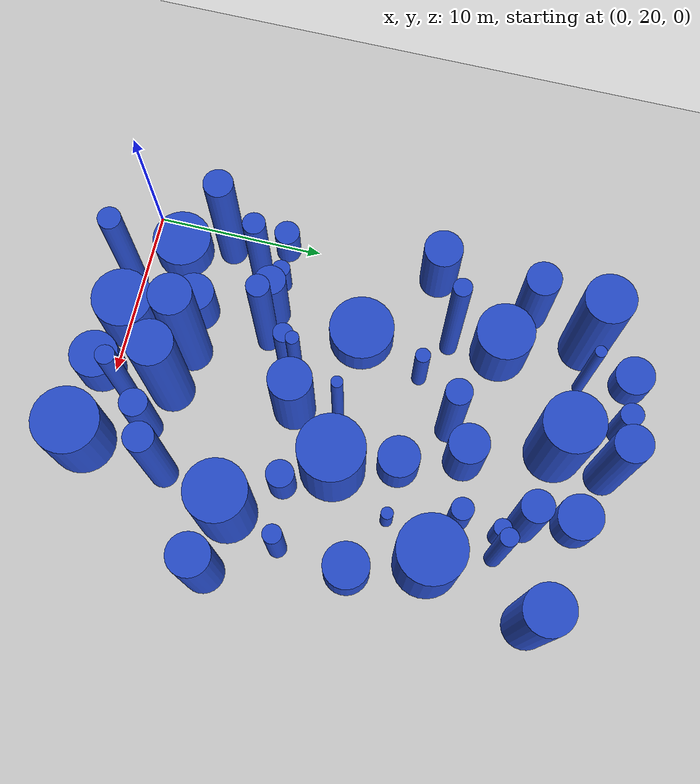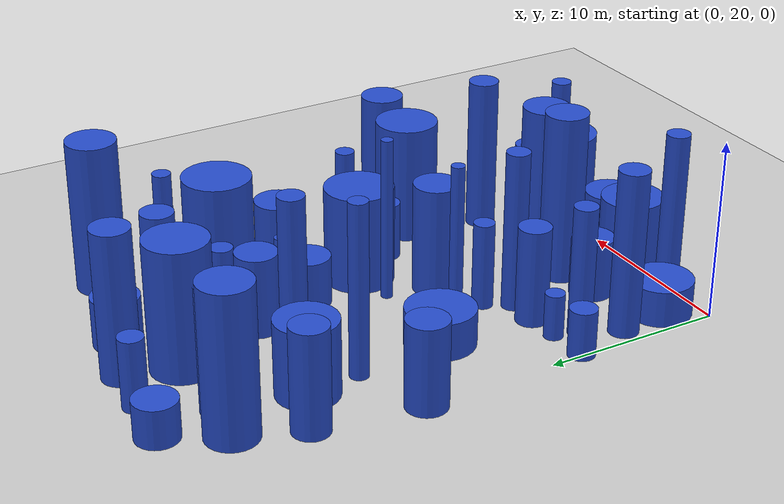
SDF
<sdf version="1.6">
 <world name="default">
  <model name="ground_plane">
   <static>1</static>
   <link name="link">
    <collision name="collision">
     <geometry><plane><normal>0 0 1</normal><size>100 100</size></plane></geometry>
     <surface><friction><ode><mu>100</mu><mu2>50</mu2></ode></friction></surface>
    </collision>
    <visual name="visual">
     <cast_shadows>0</cast_shadows>
     <geometry><plane><normal>0 0 1</normal><size>100 100</size></plane></geometry>
     <material>
      <script><uri>file://media/materials/scripts/gazebo.material</uri><name>Gazebo/Grey</name></script>
     </material>
    </visual>
   </link>
  </model>
  <model name="Cylinder 1">
   <static>1</static>
   <link name="link">
    <inertial>
     <mass>0.00941</mass>
     <inertia><ixx>0.01163</ixx><ixy>0</ixy><ixz>0</ixz><iyy>0.01163</iyy><iyz>0</iyz><izz>0.01163</izz></inertia>
    </inertial>
    <collision name="collision">
     <geometry><cylinder><length>2.96006</length><radius>1.42234</radius></cylinder></geometry>
     <surface><contact><collide_without_contact>1</collide_without_contact></contact></surface>
    </collision>
    <visual name="visual">
     <geometry><cylinder><length>2.96006</length><radius>1.42234</radius></cylinder></geometry>
     <material>
      <script><uri>file://media/materials/scripts/gazebo.material</uri><name>Gazebo/Blue</name></script>
     </material>
    </visual>
    <gravity>0</gravity>
   </link>
   <pose>10.14698 19.21792 1.48003 0 0 0</pose>
  </model>
  <model name="Cylinder 2">
   <static>1</static>
   <link name="link">
    <inertial>
     <mass>0.00759</mass>
     <inertia><ixx>0.00820</ixx><ixy>0</ixy><ixz>0</ixz><iyy>0.00820</iyy><iyz>0</iyz><izz>0.00820</izz></inertia>
    </inertial>
    <collision name="collision">
     <geometry><cylinder><length>2.78685</length><radius>1.31651</radius></cylinder></geometry>
     <surface><contact><collide_without_contact>1</collide_without_contact></contact></surface>
    </collision>
    <visual name="visual">
     <geometry><cylinder><length>2.78685</length><radius>1.31651</radius></cylinder></geometry>
     <material>
      <script><uri>file://media/materials/scripts/gazebo.material</uri><name>Gazebo/Blue</name></script>
     </material>
    </visual>
    <gravity>0</gravity>
   </link>
   <pose>12.98345 48.10699 1.39342 0 0 0</pose>
  </model>
  <model name="Cylinder 4">
   <static>1</static>
   <link name="link">
    <inertial>
     <mass>0.00154</mass>
     <inertia><ixx>0.01095</ixx><ixy>0</ixy><ixz>0</ixz><iyy>0.01095</iyy><iyz>0</iyz><izz>0.01095</izz></inertia>
    </inertial>
    <collision name="collision">
     <geometry><cylinder><length>9.22210</length><radius>0.32600</radius></cylinder></geometry>
     <surface><contact><collide_without_contact>1</collide_without_contact></contact></surface>
    </collision>
    <visual name="visual">
     <geometry><cylinder><length>9.22210</length><radius>0.32600</radius></cylinder></geometry>
     <material>
      <script><uri>file://media/materials/scripts/gazebo.material</uri><name>Gazebo/Blue</name></script>
     </material>
    </visual>
    <gravity>0</gravity>
   </link>
   <pose>10.38785 33.68484 4.61105 0 0 0</pose>
  </model>
  <model name="Cylinder 8">
   <static>1</static>
   <link name="link">
    <inertial>
     <mass>0.02367</mass>
     <inertia><ixx>0.16753</ixx><ixy>0</ixy><ixz>0</ixz><iyy>0.16753</iyy><iyz>0</iyz><izz>0.16753</izz></inertia>
    </inertial>
    <collision name="collision">
     <geometry><cylinder><length>8.93671</length><radius>1.29858</radius></cylinder></geometry>
     <surface><contact><collide_without_contact>1</collide_without_contact></contact></surface>
    </collision>
    <visual name="visual">
     <geometry><cylinder><length>8.93671</length><radius>1.29858</radius></cylinder></geometry>
     <material>
      <script><uri>file://media/materials/scripts/gazebo.material</uri><name>Gazebo/Blue</name></script>
     </material>
    </visual>
    <gravity>0</gravity>
   </link>
   <pose>10.47707 23.64607 4.46835 0 0 0</pose>
  </model>
  <model name="Cylinder 9">
   <static>1</static>
   <link name="link">
    <inertial>
     <mass>0.02638</mass>
     <inertia><ixx>0.16759</ixx><ixy>0</ixy><ixz>0</ixz><iyy>0.16759</iyy><iyz>0</iyz><izz>0.16759</izz></inertia>
    </inertial>
    <collision name="collision">
     <geometry><cylinder><length>8.37943</length><radius>1.41575</radius></cylinder></geometry>
     <surface><contact><collide_without_contact>1</collide_without_contact></contact></surface>
    </collision>
    <visual name="visual">
     <geometry><cylinder><length>8.37943</length><radius>1.41575</radius></cylinder></geometry>
     <material>
      <script><uri>file://media/materials/scripts/gazebo.material</uri><name>Gazebo/Blue</name></script>
     </material>
    </visual>
    <gravity>0</gravity>
   </link>
   <pose>2.31083 46.71842 4.18972 0 0 0</pose>
  </model>
  <model name="Cylinder 11">
   <static>1</static>
   <link name="link">
    <inertial>
     <mass>0.00958</mass>
     <inertia><ixx>0.01936</ixx><ixy>0</ixy><ixz>0</ixz><iyy>0.01936</iyy><iyz>0</iyz><izz>0.01936</izz></inertia>
    </inertial>
    <collision name="collision">
     <geometry><cylinder><length>4.49131</length><radius>1.16536</radius></cylinder></geometry>
     <surface><contact><collide_without_contact>1</collide_without_contact></contact></surface>
    </collision>
    <visual name="visual">
     <geometry><cylinder><length>4.49131</length><radius>1.16536</radius></cylinder></geometry>
     <material>
      <script><uri>file://media/materials/scripts/gazebo.material</uri><name>Gazebo/Blue</name></script>
     </material>
    </visual>
    <gravity>0</gravity>
   </link>
   <pose>10.76327 41.18394 2.24566 0 0 0</pose>
  </model>
  <model name="Cylinder 12">
   <static>1</static>
   <link name="link">
    <inertial>
     <mass>0.00571</mass>
     <inertia><ixx>0.01551</ixx><ixy>0</ixy><ixz>0</ixz><iyy>0.01551</iyy><iyz>0</iyz><izz>0.01551</izz></inertia>
    </inertial>
    <collision name="collision">
     <geometry><cylinder><length>5.53663</length><radius>0.80994</radius></cylinder></geometry>
     <surface><contact><collide_without_contact>1</collide_without_contact></contact></surface>
    </collision>
    <visual name="visual">
     <geometry><cylinder><length>5.53663</length><radius>0.80994</radius></cylinder></geometry>
     <material>
      <script><uri>file://media/materials/scripts/gazebo.material</uri><name>Gazebo/Blue</name></script>
     </material>
    </visual>
    <gravity>0</gravity>
   </link>
   <pose>13.00356 22.89477 2.76832 0 0 0</pose>
  </model>
  <model name="Cylinder 18">
   <static>1</static>
   <link name="link">
    <inertial>
     <mass>0.03255</mass>
     <inertia><ixx>0.14876</ixx><ixy>0</ixy><ixz>0</ixz><iyy>0.14876</iyy><iyz>0</iyz><izz>0.14876</izz></inertia>
    </inertial>
    <collision name="collision">
     <geometry><cylinder><length>6.75589</length><radius>1.75135</radius></cylinder></geometry>
     <surface><contact><collide_without_contact>1</collide_without_contact></contact></surface>
    </collision>
    <visual name="visual">
     <geometry><cylinder><length>6.75589</length><radius>1.75135</radius></cylinder></geometry>
     <material>
      <script><uri>file://media/materials/scripts/gazebo.material</uri><name>Gazebo/Blue</name></script>
     </material>
    </visual>
    <gravity>0</gravity>
   </link>
   <pose>16.87051 28.68189 3.37795 0 0 0</pose>
  </model>
  <model name="Cylinder 19">
   <static>1</static>
   <link name="link">
    <inertial>
     <mass>0.02855</mass>
     <inertia><ixx>0.08273</ixx><ixy>0</ixy><ixz>0</ixz><iyy>0.08273</iyy><iyz>0</iyz><izz>0.08273</izz></inertia>
    </inertial>
    <collision name="collision">
     <geometry><cylinder><length>4.85111</length><radius>1.93564</radius></cylinder></geometry>
     <surface><contact><collide_without_contact>1</collide_without_contact></contact></surface>
    </collision>
    <visual name="visual">
     <geometry><cylinder><length>4.85111</length><radius>1.93564</radius></cylinder></geometry>
     <material>
      <script><uri>file://media/materials/scripts/gazebo.material</uri><name>Gazebo/Blue</name></script>
     </material>
    </visual>
    <gravity>0</gravity>
   </link>
   <pose>14.65519 19.36153 2.42556 0 0 0</pose>
  </model>
  <model name="Cylinder 23">
   <static>1</static>
   <link name="link">
    <inertial>
     <mass>0.00337</mass>
     <inertia><ixx>0.00358</ixx><ixy>0</ixy><ixz>0</ixz><iyy>0.00358</iyy><iyz>0</iyz><izz>0.00358</izz></inertia>
    </inertial>
    <collision name="collision">
     <geometry><cylinder><length>3.28377</length><radius>0.80814</radius></cylinder></geometry>
     <surface><contact><collide_without_contact>1</collide_without_contact></contact></surface>
    </collision>
    <visual name="visual">
     <geometry><cylinder><length>3.28377</length><radius>0.80814</radius></cylinder></geometry>
     <material>
      <script><uri>file://media/materials/scripts/gazebo.material</uri><name>Gazebo/Blue</name></script>
     </material>
    </visual>
    <gravity>0</gravity>
   </link>
   <pose>14.54930 31.37264 1.64188 0 0 0</pose>
  </model>
  <model name="Cylinder 24">
   <static>1</static>
   <link name="link">
    <inertial>
     <mass>0.00177</mass>
     <inertia><ixx>0.00936</ixx><ixy>0</ixy><ixz>0</ixz><iyy>0.00936</iyy><iyz>0</iyz><izz>0.00936</izz></inertia>
    </inertial>
    <collision name="collision">
     <geometry><cylinder><length>7.94022</length><radius>0.37670</radius></cylinder></geometry>
     <surface><contact><collide_without_contact>1</collide_without_contact></contact></surface>
    </collision>
    <visual name="visual">
     <geometry><cylinder><length>7.94022</length><radius>0.37670</radius></cylinder></geometry>
     <material>
      <script><uri>file://media/materials/scripts/gazebo.material</uri><name>Gazebo/Blue</name></script>
     </material>
    </visual>
    <gravity>0</gravity>
   </link>
   <pose>8.19212 30.69809 3.97011 0 0 0</pose>
  </model>
  <model name="Cylinder 27">
   <static>1</static>
   <link name="link">
    <inertial>
     <mass>0.01885</mass>
     <inertia><ixx>0.04160</ixx><ixy>0</ixy><ixz>0</ixz><iyy>0.04160</iyy><iyz>0</iyz><izz>0.04160</izz></inertia>
    </inertial>
    <collision name="collision">
     <geometry><cylinder><length>4.24377</length><radius>1.68137</radius></cylinder></geometry>
     <surface><contact><collide_without_contact>1</collide_without_contact></contact></surface>
    </collision>
    <visual name="visual">
     <geometry><cylinder><length>4.24377</length><radius>1.68137</radius></cylinder></geometry>
     <material>
      <script><uri>file://media/materials/scripts/gazebo.material</uri><name>Gazebo/Blue</name></script>
     </material>
    </visual>
    <gravity>0</gravity>
   </link>
   <pose>3.85539 41.89579 2.12189 0 0 0</pose>
  </model>
  <model name="Cylinder 30">
   <static>1</static>
   <link name="link">
    <inertial>
     <mass>0.01532</mass>
     <inertia><ixx>0.05608</ixx><ixy>0</ixy><ixz>0</ixz><iyy>0.05608</iyy><iyz>0</iyz><izz>0.05608</izz></inertia>
    </inertial>
    <collision name="collision">
     <geometry><cylinder><length>6.26560</length><radius>1.24760</radius></cylinder></geometry>
     <surface><contact><collide_without_contact>1</collide_without_contact></contact></surface>
    </collision>
    <visual name="visual">
     <geometry><cylinder><length>6.26560</length><radius>1.24760</radius></cylinder></geometry>
     <material>
      <script><uri>file://media/materials/scripts/gazebo.material</uri><name>Gazebo/Blue</name></script>
     </material>
    </visual>
    <gravity>0</gravity>
   </link>
   <pose>9.94759 30.92464 3.13280 0 0 0</pose>
  </model>
  <model name="Cylinder 31">
   <static>1</static>
   <link name="link">
    <inertial>
     <mass>0.00222</mass>
     <inertia><ixx>0.00228</ixx><ixy>0</ixy><ixz>0</ixz><iyy>0.00228</iyy><iyz>0</iyz><izz>0.00228</izz></inertia>
    </inertial>
    <collision name="collision">
     <geometry><cylinder><length>3.31741</length><radius>0.65316</radius></cylinder></geometry>
     <surface><contact><collide_without_contact>1</collide_without_contact></contact></surface>
    </collision>
    <visual name="visual">
     <geometry><cylinder><length>3.31741</length><radius>0.65316</radius></cylinder></geometry>
     <material>
      <script><uri>file://media/materials/scripts/gazebo.material</uri><name>Gazebo/Blue</name></script>
     </material>
    </visual>
    <gravity>0</gravity>
   </link>
   <pose>14.14719 41.62079 1.65870 0 0 0</pose>
  </model>
  <model name="Cylinder 32">
   <static>1</static>
   <link name="link">
    <inertial>
     <mass>0.00687</mass>
     <inertia><ixx>0.01867</ixx><ixy>0</ixy><ixz>0</ixz><iyy>0.01867</iyy><iyz>0</iyz><izz>0.01867</izz></inertia>
    </inertial>
    <collision name="collision">
     <geometry><cylinder><length>5.49777</length><radius>0.89200</radius></cylinder></geometry>
     <surface><contact><collide_without_contact>1</collide_without_contact></contact></surface>
    </collision>
    <visual name="visual">
     <geometry><cylinder><length>5.49777</length><radius>0.89200</radius></cylinder></geometry>
     <material>
      <script><uri>file://media/materials/scripts/gazebo.material</uri><name>Gazebo/Blue</name></script>
     </material>
    </visual>
    <gravity>0</gravity>
   </link>
   <pose>4.40075 28.35517 2.74888 0 0 0</pose>
  </model>
  <model name="Cylinder 38">
   <static>1</static>
   <link name="link">
    <inertial>
     <mass>0.00592</mass>
     <inertia><ixx>0.04070</ixx><ixy>0</ixy><ixz>0</ixz><iyy>0.04070</iyy><iyz>0</iyz><izz>0.04070</izz></inertia>
    </inertial>
    <collision name="collision">
     <geometry><cylinder><length>9.00999</length><radius>0.64700</radius></cylinder></geometry>
     <surface><contact><collide_without_contact>1</collide_without_contact></contact></surface>
    </collision>
    <visual name="visual">
     <geometry><cylinder><length>9.00999</length><radius>0.64700</radius></cylinder></geometry>
     <material>
      <script><uri>file://media/materials/scripts/gazebo.material</uri><name>Gazebo/Blue</name></script>
     </material>
    </visual>
    <gravity>0</gravity>
   </link>
   <pose>6.15125 28.36226 4.50499 0 0 0</pose>
  </model>
  <model name="Cylinder 45">
   <static>1</static>
   <link name="link">
    <inertial>
     <mass>0.00300</mass>
     <inertia><ixx>0.01412</ixx><ixy>0</ixy><ixz>0</ixz><iyy>0.01412</iyy><iyz>0</iyz><izz>0.01412</izz></inertia>
    </inertial>
    <collision name="collision">
     <geometry><cylinder><length>7.46959</length><radius>0.50532</radius></cylinder></geometry>
     <surface><contact><collide_without_contact>1</collide_without_contact></contact></surface>
    </collision>
    <visual name="visual">
     <geometry><cylinder><length>7.46959</length><radius>0.50532</radius></cylinder></geometry>
     <material>
      <script><uri>file://media/materials/scripts/gazebo.material</uri><name>Gazebo/Blue</name></script>
     </material>
    </visual>
    <gravity>0</gravity>
   </link>
   <pose>15.87537 44.01819 3.73480 0 0 0</pose>
  </model>
  <model name="Cylinder 47">
   <static>1</static>
   <link name="link">
    <inertial>
     <mass>0.03507</mass>
     <inertia><ixx>0.13636</ixx><ixy>0</ixy><ixz>0</ixz><iyy>0.13636</iyy><iyz>0</iyz><izz>0.13636</izz></inertia>
    </inertial>
    <collision name="collision">
     <geometry><cylinder><length>5.95043</length><radius>1.93695</radius></cylinder></geometry>
     <surface><contact><collide_without_contact>1</collide_without_contact></contact></surface>
    </collision>
    <visual name="visual">
     <geometry><cylinder><length>5.95043</length><radius>1.93695</radius></cylinder></geometry>
     <material>
      <script><uri>file://media/materials/scripts/gazebo.material</uri><name>Gazebo/Blue</name></script>
     </material>
    </visual>
    <gravity>0</gravity>
   </link>
   <pose>17.12489 40.38482 2.97521 0 0 0</pose>
  </model>
  <model name="Cylinder 48">
   <static>1</static>
   <link name="link">
    <inertial>
     <mass>0.00286</mass>
     <inertia><ixx>0.00406</ixx><ixy>0</ixy><ixz>0</ixz><iyy>0.00406</iyy><iyz>0</iyz><izz>0.00406</izz></inertia>
    </inertial>
    <collision name="collision">
     <geometry><cylinder><length>3.95570</length><radius>0.67819</radius></cylinder></geometry>
     <surface><contact><collide_without_contact>1</collide_without_contact></contact></surface>
    </collision>
    <visual name="visual">
     <geometry><cylinder><length>3.95570</length><radius>0.67819</radius></cylinder></geometry>
     <material>
      <script><uri>file://media/materials/scripts/gazebo.material</uri><name>Gazebo/Blue</name></script>
     </material>
    </visual>
    <gravity>0</gravity>
   </link>
   <pose>6.93025 49.67990 1.97785 0 0 0</pose>
  </model>
  <model name="Cylinder 54">
   <static>1</static>
   <link name="link">
    <inertial>
     <mass>0.00740</mass>
     <inertia><ixx>0.00953</ixx><ixy>0</ixy><ixz>0</ixz><iyy>0.00953</iyy><iyz>0</iyz><izz>0.00953</izz></inertia>
    </inertial>
    <collision name="collision">
     <geometry><cylinder><length>3.35394</length><radius>1.18499</radius></cylinder></geometry>
     <surface><contact><collide_without_contact>1</collide_without_contact></contact></surface>
    </collision>
    <visual name="visual">
     <geometry><cylinder><length>3.35394</length><radius>1.18499</radius></cylinder></geometry>
     <material>
      <script><uri>file://media/materials/scripts/gazebo.material</uri><name>Gazebo/Blue</name></script>
     </material>
    </visual>
    <gravity>0</gravity>
   </link>
   <pose>5.33303 23.89027 1.67697 0 0 0</pose>
  </model>
  <model name="Cylinder 60">
   <static>1</static>
   <link name="link">
    <inertial>
     <mass>0.01216</mass>
     <inertia><ixx>0.01565</ixx><ixy>0</ixy><ixz>0</ixz><iyy>0.01565</iyy><iyz>0</iyz><izz>0.01565</izz></inertia>
    </inertial>
    <collision name="collision">
     <geometry><cylinder><length>2.11794</length><radius>1.91147</radius></cylinder></geometry>
     <surface><contact><collide_without_contact>1</collide_without_contact></contact></surface>
    </collision>
    <visual name="visual">
     <geometry><cylinder><length>2.11794</length><radius>1.91147</radius></cylinder></geometry>
     <material>
      <script><uri>file://media/materials/scripts/gazebo.material</uri><name>Gazebo/Blue</name></script>
     </material>
    </visual>
    <gravity>0</gravity>
   </link>
   <pose>4.76813 33.75437 1.05897 0 0 0</pose>
  </model>
  <model name="Cylinder 62">
   <static>1</static>
   <link name="link">
    <inertial>
     <mass>0.00486</mass>
     <inertia><ixx>0.02229</ixx><ixy>0</ixy><ixz>0</ixz><iyy>0.02229</iyy><iyz>0</iyz><izz>0.02229</izz></inertia>
    </inertial>
    <collision name="collision">
     <geometry><cylinder><length>7.33388</length><radius>0.64949</radius></cylinder></geometry>
     <surface><contact><collide_without_contact>1</collide_without_contact></contact></surface>
    </collision>
    <visual name="visual">
     <geometry><cylinder><length>7.33388</length><radius>0.64949</radius></cylinder></geometry>
     <material>
      <script><uri>file://media/materials/scripts/gazebo.material</uri><name>Gazebo/Blue</name></script>
     </material>
    </visual>
    <gravity>0</gravity>
   </link>
   <pose>2.04427 26.95374 3.66694 0 0 0</pose>
  </model>
  <model name="Cylinder 68">
   <static>1</static>
   <link name="link">
    <inertial>
     <mass>0.02121</mass>
     <inertia><ixx>0.17182</ixx><ixy>0</ixy><ixz>0</ixz><iyy>0.17182</iyy><iyz>0</iyz><izz>0.17182</izz></inertia>
    </inertial>
    <collision name="collision">
     <geometry><cylinder><length>9.64456</length><radius>1.18320</radius></cylinder></geometry>
     <surface><contact><collide_without_contact>1</collide_without_contact></contact></surface>
    </collision>
    <visual name="visual">
     <geometry><cylinder><length>9.64456</length><radius>1.18320</radius></cylinder></geometry>
     <material>
      <script><uri>file://media/materials/scripts/gazebo.material</uri><name>Gazebo/Blue</name></script>
     </material>
    </visual>
    <gravity>0</gravity>
   </link>
   <pose>7.88858 24.14124 4.82228 0 0 0</pose>
  </model>
  <model name="Cylinder 69">
   <static>1</static>
   <link name="link">
    <inertial>
     <mass>0.00240</mass>
     <inertia><ixx>0.00537</ixx><ixy>0</ixy><ixz>0</ixz><iyy>0.00537</iyy><iyz>0</iyz><izz>0.00537</izz></inertia>
    </inertial>
    <collision name="collision">
     <geometry><cylinder><length>5.09377</length><radius>0.54785</radius></cylinder></geometry>
     <surface><contact><collide_without_contact>1</collide_without_contact></contact></surface>
    </collision>
    <visual name="visual">
     <geometry><cylinder><length>5.09377</length><radius>0.54785</radius></cylinder></geometry>
     <material>
      <script><uri>file://media/materials/scripts/gazebo.material</uri><name>Gazebo/Blue</name></script>
     </material>
    </visual>
    <gravity>0</gravity>
   </link>
   <pose>18.16265 31.97028 2.54688 0 0 0</pose>
  </model>
  <model name="Cylinder 71">
   <static>1</static>
   <link name="link">
    <inertial>
     <mass>0.03204</mass>
     <inertia><ixx>0.11135</ixx><ixy>0</ixy><ixz>0</ixz><iyy>0.11135</iyy><iyz>0</iyz><izz>0.11135</izz></inertia>
    </inertial>
    <collision name="collision">
     <geometry><cylinder><length>5.53654</length><radius>1.91935</radius></cylinder></geometry>
     <surface><contact><collide_without_contact>1</collide_without_contact></contact></surface>
    </collision>
    <visual name="visual">
     <geometry><cylinder><length>5.53654</length><radius>1.91935</radius></cylinder></geometry>
     <material>
      <script><uri>file://media/materials/scripts/gazebo.material</uri><name>Gazebo/Blue</name></script>
     </material>
    </visual>
    <gravity>0</gravity>
   </link>
   <pose>12.96430 33.94154 2.76827 0 0 0</pose>
  </model>
  <model name="Cylinder 72">
   <static>1</static>
   <link name="link">
    <inertial>
     <mass>0.00856</mass>
     <inertia><ixx>0.03178</ixx><ixy>0</ixy><ixz>0</ixz><iyy>0.03178</iyy><iyz>0</iyz><izz>0.03178</izz></inertia>
    </inertial>
    <collision name="collision">
     <geometry><cylinder><length>6.48225</length><radius>0.91704</radius></cylinder></geometry>
     <surface><contact><collide_without_contact>1</collide_without_contact></contact></surface>
    </collision>
    <visual name="visual">
     <geometry><cylinder><length>6.48225</length><radius>0.91704</radius></cylinder></geometry>
     <material>
      <script><uri>file://media/materials/scripts/gazebo.material</uri><name>Gazebo/Blue</name></script>
     </material>
    </visual>
    <gravity>0</gravity>
   </link>
   <pose>13.74956 45.25492 3.24112 0 0 0</pose>
  </model>
  <model name="Cylinder 73">
   <static>1</static>
   <link name="link">
    <inertial>
     <mass>0.01438</mass>
     <inertia><ixx>0.08756</ixx><ixy>0</ixy><ixz>0</ixz><iyy>0.08756</iyy><iyz>0</iyz><izz>0.08756</izz></inertia>
    </inertial>
    <collision name="collision">
     <geometry><cylinder><length>8.35412</length><radius>1.04674</radius></cylinder></geometry>
     <surface><contact><collide_without_contact>1</collide_without_contact></contact></surface>
    </collision>
    <visual name="visual">
     <geometry><cylinder><length>8.35412</length><radius>1.04674</radius></cylinder></geometry>
     <material>
      <script><uri>file://media/materials/scripts/gazebo.material</uri><name>Gazebo/Blue</name></script>
     </material>
    </visual>
    <gravity>0</gravity>
   </link>
   <pose>9.83690 49.22803 4.17706 0 0 0</pose>
  </model>
  <model name="Cylinder 77">
   <static>1</static>
   <link name="link">
    <inertial>
     <mass>0.00798</mass>
     <inertia><ixx>0.00898</ixx><ixy>0</ixy><ixz>0</ixz><iyy>0.00898</iyy><iyz>0</iyz><izz>0.00898</izz></inertia>
    </inertial>
    <collision name="collision">
     <geometry><cylinder><length>2.85475</length><radius>1.33441</radius></cylinder></geometry>
     <surface><contact><collide_without_contact>1</collide_without_contact></contact></surface>
    </collision>
    <visual name="visual">
     <geometry><cylinder><length>2.85475</length><radius>1.33441</radius></cylinder></geometry>
     <material>
      <script><uri>file://media/materials/scripts/gazebo.material</uri><name>Gazebo/Blue</name></script>
     </material>
    </visual>
    <gravity>0</gravity>
   </link>
   <pose>18.57212 36.09530 1.42737 0 0 0</pose>
  </model>
  <model name="Cylinder 78">
   <static>1</static>
   <link name="link">
    <inertial>
     <mass>0.00965</mass>
     <inertia><ixx>0.01062</ixx><ixy>0</ixy><ixz>0</ixz><iyy>0.01062</iyy><iyz>0</iyz><izz>0.01062</izz></inertia>
    </inertial>
    <collision name="collision">
     <geometry><cylinder><length>2.04912</length><radius>1.73180</radius></cylinder></geometry>
     <surface><contact><collide_without_contact>1</collide_without_contact></contact></surface>
    </collision>
    <visual name="visual">
     <geometry><cylinder><length>2.04912</length><radius>1.73180</radius></cylinder></geometry>
     <material>
      <script><uri>file://media/materials/scripts/gazebo.material</uri><name>Gazebo/Blue</name></script>
     </material>
    </visual>
    <gravity>0</gravity>
   </link>
   <pose>1.73871 21.99245 1.02456 0 0 0</pose>
  </model>
  <model name="Cylinder 79">
   <static>1</static>
   <link name="link">
    <inertial>
     <mass>0.01008</mass>
     <inertia><ixx>0.07397</ixx><ixy>0</ixy><ixz>0</ixz><iyy>0.07397</iyy><iyz>0</iyz><izz>0.07397</izz></inertia>
    </inertial>
    <collision name="collision">
     <geometry><cylinder><length>9.27308</length><radius>0.83185</radius></cylinder></geometry>
     <surface><contact><collide_without_contact>1</collide_without_contact></contact></surface>
    </collision>
    <visual name="visual">
     <geometry><cylinder><length>9.27308</length><radius>0.83185</radius></cylinder></geometry>
     <material>
      <script><uri>file://media/materials/scripts/gazebo.material</uri><name>Gazebo/Blue</name></script>
     </material>
    </visual>
    <gravity>0</gravity>
   </link>
   <pose>1.05022 24.86682 4.63654 0 0 0</pose>
  </model>
  <model name="Cylinder 88">
   <static>1</static>
   <link name="link">
    <inertial>
     <mass>0.00114</mass>
     <inertia><ixx>0.00070</ixx><ixy>0</ixy><ixz>0</ixz><iyy>0.00070</iyy><iyz>0</iyz><izz>0.00070</izz></inertia>
    </inertial>
    <collision name="collision">
     <geometry><cylinder><length>2.54850</length><radius>0.53450</radius></cylinder></geometry>
     <surface><contact><collide_without_contact>1</collide_without_contact></contact></surface>
    </collision>
    <visual name="visual">
     <geometry><cylinder><length>2.54850</length><radius>0.53450</radius></cylinder></geometry>
     <material>
      <script><uri>file://media/materials/scripts/gazebo.material</uri><name>Gazebo/Blue</name></script>
     </material>
    </visual>
    <gravity>0</gravity>
   </link>
   <pose>2.43515 28.32441 1.27425 0 0 0</pose>
  </model>
  <model name="Cylinder 89">
   <static>1</static>
   <link name="link">
    <inertial>
     <mass>0.00417</mass>
     <inertia><ixx>0.03309</ixx><ixy>0</ixy><ixz>0</ixz><iyy>0.03309</iyy><iyz>0</iyz><izz>0.03309</izz></inertia>
    </inertial>
    <collision name="collision">
     <geometry><cylinder><length>9.71573</length><radius>0.52275</radius></cylinder></geometry>
     <surface><contact><collide_without_contact>1</collide_without_contact></contact></surface>
    </collision>
    <visual name="visual">
     <geometry><cylinder><length>9.71573</length><radius>0.52275</radius></cylinder></geometry>
     <material>
      <script><uri>file://media/materials/scripts/gazebo.material</uri><name>Gazebo/Blue</name></script>
     </material>
    </visual>
    <gravity>0</gravity>
   </link>
   <pose>4.04189 38.91100 4.85787 0 0 0</pose>
  </model>
  <model name="Cylinder 91">
   <static>1</static>
   <link name="link">
    <inertial>
     <mass>0.02608</mass>
     <inertia><ixx>0.17533</ixx><ixy>0</ixy><ixz>0</ixz><iyy>0.17533</iyy><iyz>0</iyz><izz>0.17533</izz></inertia>
    </inertial>
    <collision name="collision">
     <geometry><cylinder><length>8.65557</length><radius>1.38500</radius></cylinder></geometry>
     <surface><contact><collide_without_contact>1</collide_without_contact></contact></surface>
    </collision>
    <visual name="visual">
     <geometry><cylinder><length>8.65557</length><radius>1.38500</radius></cylinder></geometry>
     <material>
      <script><uri>file://media/materials/scripts/gazebo.material</uri><name>Gazebo/Blue</name></script>
     </material>
    </visual>
    <gravity>0</gravity>
   </link>
   <pose>19.15441 46.53973 4.32779 0 0 0</pose>
  </model>
  <model name="Cylinder 94">
   <static>1</static>
   <link name="link">
    <inertial>
     <mass>0.03418</mass>
     <inertia><ixx>0.17818</ixx><ixy>0</ixy><ixz>0</ixz><iyy>0.17818</iyy><iyz>0</iyz><izz>0.17818</izz></inertia>
    </inertial>
    <collision name="collision">
     <geometry><cylinder><length>7.32363</length><radius>1.72379</radius></cylinder></geometry>
     <surface><contact><collide_without_contact>1</collide_without_contact></contact></surface>
    </collision>
    <visual name="visual">
     <geometry><cylinder><length>7.32363</length><radius>1.72379</radius></cylinder></geometry>
     <material>
      <script><uri>file://media/materials/scripts/gazebo.material</uri><name>Gazebo/Blue</name></script>
     </material>
    </visual>
    <gravity>0</gravity>
   </link>
   <pose>9.09608 46.20958 3.66182 0 0 0</pose>
  </model>
  <model name="Cylinder 95">
   <static>1</static>
   <link name="link">
    <inertial>
     <mass>0.01591</mass>
     <inertia><ixx>0.06906</ixx><ixy>0</ixy><ixz>0</ixz><iyy>0.06906</iyy><iyz>0</iyz><izz>0.06906</izz></inertia>
    </inertial>
    <collision name="collision">
     <geometry><cylinder><length>6.90696</length><radius>1.21081</radius></cylinder></geometry>
     <surface><contact><collide_without_contact>1</collide_without_contact></contact></surface>
    </collision>
    <visual name="visual">
     <geometry><cylinder><length>6.90696</length><radius>1.21081</radius></cylinder></geometry>
     <material>
      <script><uri>file://media/materials/scripts/gazebo.material</uri><name>Gazebo/Blue</name></script>
     </material>
    </visual>
    <gravity>0</gravity>
   </link>
   <pose>20.44518 28.23528 3.45348 0 0 0</pose>
  </model>
  <model name="Cylinder 96">
   <static>1</static>
   <link name="link">
    <inertial>
     <mass>0.00425</mass>
     <inertia><ixx>0.03237</ixx><ixy>0</ixy><ixz>0</ixz><iyy>0.03237</iyy><iyz>0</iyz><izz>0.03237</izz></inertia>
    </inertial>
    <collision name="collision">
     <geometry><cylinder><length>9.51354</length><radius>0.53339</radius></cylinder></geometry>
     <surface><contact><collide_without_contact>1</collide_without_contact></contact></surface>
    </collision>
    <visual name="visual">
     <geometry><cylinder><length>9.51354</length><radius>0.53339</radius></cylinder></geometry>
     <material>
      <script><uri>file://media/materials/scripts/gazebo.material</uri><name>Gazebo/Blue</name></script>
     </material>
    </visual>
    <gravity>0</gravity>
   </link>
   <pose>11.80693 21.77096 4.75677 0 0 0</pose>
  </model>
  <model name="Cylinder 98">
   <static>1</static>
   <link name="link">
    <inertial>
     <mass>0.00261</mass>
     <inertia><ixx>0.00545</ixx><ixy>0</ixy><ixz>0</ixz><iyy>0.00545</iyy><iyz>0</iyz><izz>0.00545</izz></inertia>
    </inertial>
    <collision name="collision">
     <geometry><cylinder><length>4.90646</length><radius>0.58157</radius></cylinder></geometry>
     <surface><contact><collide_without_contact>1</collide_without_contact></contact></surface>
    </collision>
    <visual name="visual">
     <geometry><cylinder><length>4.90646</length><radius>0.58157</radius></cylinder></geometry>
     <material>
      <script><uri>file://media/materials/scripts/gazebo.material</uri><name>Gazebo/Blue</name></script>
     </material>
    </visual>
    <gravity>0</gravity>
   </link>
   <pose>7.04725 29.73636 2.45323 0 0 0</pose>
  </model>
  <model name="Cylinder 101">
   <static>1</static>
   <link name="link">
    <inertial>
     <mass>0.00694</mass>
     <inertia><ixx>0.03880</ixx><ixy>0</ixy><ixz>0</ixz><iyy>0.03880</iyy><iyz>0</iyz><izz>0.03880</izz></inertia>
    </inertial>
    <collision name="collision">
     <geometry><cylinder><length>8.08942</length><radius>0.73908</radius></cylinder></geometry>
     <surface><contact><collide_without_contact>1</collide_without_contact></contact></surface>
    </collision>
    <visual name="visual">
     <geometry><cylinder><length>8.08942</length><radius>0.73908</radius></cylinder></geometry>
     <material>
      <script><uri>file://media/materials/scripts/gazebo.material</uri><name>Gazebo/Blue</name></script>
     </material>
    </visual>
    <gravity>0</gravity>
   </link>
   <pose>9.11472 39.93274 4.04471 0 0 0</pose>
  </model>
  <model name="Cylinder 102">
   <static>1</static>
   <link name="link">
    <inertial>
     <mass>0.00649</mass>
     <inertia><ixx>0.00661</ixx><ixy>0</ixy><ixz>0</ixz><iyy>0.00661</iyy><iyz>0</iyz><izz>0.00661</izz></inertia>
    </inertial>
    <collision name="collision">
     <geometry><cylinder><length>2.78665</length><radius>1.21802</radius></cylinder></geometry>
     <surface><contact><collide_without_contact>1</collide_without_contact></contact></surface>
    </collision>
    <visual name="visual">
     <geometry><cylinder><length>2.78665</length><radius>1.21802</radius></cylinder></geometry>
     <material>
      <script><uri>file://media/materials/scripts/gazebo.material</uri><name>Gazebo/Blue</name></script>
     </material>
    </visual>
    <gravity>0</gravity>
   </link>
   <pose>11.95645 37.58189 1.39332 0 0 0</pose>
  </model>
  <model name="Cylinder 103">
   <static>1</static>
   <link name="link">
    <inertial>
     <mass>0.00130</mass>
     <inertia><ixx>0.00114</ixx><ixy>0</ixy><ixz>0</ixz><iyy>0.00114</iyy><iyz>0</iyz><izz>0.00114</izz></inertia>
    </inertial>
    <collision name="collision">
     <geometry><cylinder><length>3.11992</length><radius>0.51580</radius></cylinder></geometry>
     <surface><contact><collide_without_contact>1</collide_without_contact></contact></surface>
    </collision>
    <visual name="visual">
     <geometry><cylinder><length>3.11992</length><radius>0.51580</radius></cylinder></geometry>
     <material>
      <script><uri>file://media/materials/scripts/gazebo.material</uri><name>Gazebo/Blue</name></script>
     </material>
    </visual>
    <gravity>0</gravity>
   </link>
   <pose>14.61630 43.98504 1.55996 0 0 0</pose>
  </model>
  <model name="Cylinder 110">
   <static>1</static>
   <link name="link">
    <inertial>
     <mass>0.00460</mass>
     <inertia><ixx>0.00335</ixx><ixy>0</ixy><ixz>0</ixz><iyy>0.00335</iyy><iyz>0</iyz><izz>0.00335</izz></inertia>
    </inertial>
    <collision name="collision">
     <geometry><cylinder><length>2.15926</length><radius>1.16506</radius></cylinder></geometry>
     <surface><contact><collide_without_contact>1</collide_without_contact></contact></surface>
    </collision>
    <visual name="visual">
     <geometry><cylinder><length>2.15926</length><radius>1.16506</radius></cylinder></geometry>
     <material>
      <script><uri>file://media/materials/scripts/gazebo.material</uri><name>Gazebo/Blue</name></script>
     </material>
    </visual>
    <gravity>0</gravity>
   </link>
   <pose>4.00869 49.79029 1.07963 0 0 0</pose>
  </model>
  <model name="Cylinder 111">
   <static>1</static>
   <link name="link">
    <inertial>
     <mass>0.02021</mass>
     <inertia><ixx>0.04534</ixx><ixy>0</ixy><ixz>0</ixz><iyy>0.04534</iyy><iyz>0</iyz><izz>0.04534</izz></inertia>
    </inertial>
    <collision name="collision">
     <geometry><cylinder><length>4.21395</length><radius>1.74746</radius></cylinder></geometry>
     <surface><contact><collide_without_contact>1</collide_without_contact></contact></surface>
    </collision>
    <visual name="visual">
     <geometry><cylinder><length>4.21395</length><radius>1.74746</radius></cylinder></geometry>
     <material>
      <script><uri>file://media/materials/scripts/gazebo.material</uri><name>Gazebo/Blue</name></script>
     </material>
    </visual>
    <gravity>0</gravity>
   </link>
   <pose>6.87735 20.18077 2.10698 0 0 0</pose>
  </model>
  <model name="Cylinder 114">
   <static>1</static>
   <link name="link">
    <inertial>
     <mass>0.00967</mass>
     <inertia><ixx>0.02214</ixx><ixy>0</ixy><ixz>0</ixz><iyy>0.02214</iyy><iyz>0</iyz><izz>0.02214</izz></inertia>
    </inertial>
    <collision name="collision">
     <geometry><cylinder><length>4.86626</length><radius>1.12464</radius></cylinder></geometry>
     <surface><contact><collide_without_contact>1</collide_without_contact></contact></surface>
    </collision>
    <visual name="visual">
     <geometry><cylinder><length>4.86626</length><radius>1.12464</radius></cylinder></geometry>
     <material>
      <script><uri>file://media/materials/scripts/gazebo.material</uri><name>Gazebo/Blue</name></script>
     </material>
    </visual>
    <gravity>0</gravity>
   </link>
   <pose>0.01295 37.42454 2.43313 0 0 0</pose>
  </model>
  <model name="Cylinder 119">
   <static>1</static>
   <link name="link">
    <inertial>
     <mass>0.00049</mass>
     <inertia><ixx>0.00025</ixx><ixy>0</ixy><ixz>0</ixz><iyy>0.00025</iyy><iyz>0</iyz><izz>0.00025</izz></inertia>
    </inertial>
    <collision name="collision">
     <geometry><cylinder><length>2.41007</length><radius>0.36105</radius></cylinder></geometry>
     <surface><contact><collide_without_contact>1</collide_without_contact></contact></surface>
    </collision>
    <visual name="visual">
     <geometry><cylinder><length>2.41007</length><radius>0.36105</radius></cylinder></geometry>
     <material>
      <script><uri>file://media/materials/scripts/gazebo.material</uri><name>Gazebo/Blue</name></script>
     </material>
    </visual>
    <gravity>0</gravity>
   </link>
   <pose>15.17477 37.63724 1.20503 0 0 0</pose>
  </model>
  <model name="Cylinder 120">
   <static>1</static>
   <link name="link">
    <inertial>
     <mass>0.00969</mass>
     <inertia><ixx>0.06444</ixx><ixy>0</ixy><ixz>0</ixz><iyy>0.06444</iyy><iyz>0</iyz><izz>0.06444</izz></inertia>
    </inertial>
    <collision name="collision">
     <geometry><cylinder><length>8.81317</length><radius>0.83681</radius></cylinder></geometry>
     <surface><contact><collide_without_contact>1</collide_without_contact></contact></surface>
    </collision>
    <visual name="visual">
     <geometry><cylinder><length>8.81317</length><radius>0.83681</radius></cylinder></geometry>
     <material>
      <script><uri>file://media/materials/scripts/gazebo.material</uri><name>Gazebo/Blue</name></script>
     </material>
    </visual>
    <gravity>0</gravity>
   </link>
   <pose>15.44685 24.48921 4.40659 0 0 0</pose>
  </model>
  <model name="Cylinder 129">
   <static>1</static>
   <link name="link">
    <inertial>
     <mass>0.00936</mass>
     <inertia><ixx>0.02868</ixx><ixy>0</ixy><ixz>0</ixz><iyy>0.02868</iyy><iyz>0</iyz><izz>0.02868</izz></inertia>
    </inertial>
    <collision name="collision">
     <geometry><cylinder><length>5.80393</length><radius>1.01332</radius></cylinder></geometry>
     <surface><contact><collide_without_contact>1</collide_without_contact></contact></surface>
    </collision>
    <visual name="visual">
     <geometry><cylinder><length>5.80393</length><radius>1.01332</radius></cylinder></geometry>
     <material>
      <script><uri>file://media/materials/scripts/gazebo.material</uri><name>Gazebo/Blue</name></script>
     </material>
    </visual>
    <gravity>0</gravity>
   </link>
   <pose>0.89410 43.26580 2.90197 0 0 0</pose>
  </model>
  <model name="Cylinder 136">
   <static>1</static>
   <link name="link">
    <inertial>
     <mass>0.00121</mass>
     <inertia><ixx>0.00479</ixx><ixy>0</ixy><ixz>0</ixz><iyy>0.00479</iyy><iyz>0</iyz><izz>0.00479</izz></inertia>
    </inertial>
    <collision name="collision">
     <geometry><cylinder><length>6.87921</length><radius>0.33418</radius></cylinder></geometry>
     <surface><contact><collide_without_contact>1</collide_without_contact></contact></surface>
    </collision>
    <visual name="visual">
     <geometry><cylinder><length>6.87921</length><radius>0.33418</radius></cylinder></geometry>
     <material>
      <script><uri>file://media/materials/scripts/gazebo.material</uri><name>Gazebo/Blue</name></script>
     </material>
    </visual>
    <gravity>0</gravity>
   </link>
   <pose>4.78145 46.91258 3.43961 0 0 0</pose>
  </model>
  <model name="Cylinder 142">
   <static>1</static>
   <link name="link">
    <inertial>
     <mass>0.00237</mass>
     <inertia><ixx>0.00178</ixx><ixy>0</ixy><ixz>0</ixz><iyy>0.00178</iyy><iyz>0</iyz><izz>0.00178</izz></inertia>
    </inertial>
    <collision name="collision">
     <geometry><cylinder><length>2.70989</length><radius>0.74571</radius></cylinder></geometry>
     <surface><contact><collide_without_contact>1</collide_without_contact></contact></surface>
    </collision>
    <visual name="visual">
     <geometry><cylinder><length>2.70989</length><radius>0.74571</radius></cylinder></geometry>
     <material>
      <script><uri>file://media/materials/scripts/gazebo.material</uri><name>Gazebo/Blue</name></script>
     </material>
    </visual>
    <gravity>0</gravity>
   </link>
   <pose>0.21698 28.13520 1.35495 0 0 0</pose>
  </model>
  <model name="Cylinder 143">
   <static>1</static>
   <link name="link">
    <inertial>
     <mass>0.00593</mass>
     <inertia><ixx>0.03930</ixx><ixy>0</ixy><ixz>0</ixz><iyy>0.03930</iyy><iyz>0</iyz><izz>0.03930</izz></inertia>
    </inertial>
    <collision name="collision">
     <geometry><cylinder><length>8.84493</length><radius>0.65341</radius></cylinder></geometry>
     <surface><contact><collide_without_contact>1</collide_without_contact></contact></surface>
    </collision>
    <visual name="visual">
     <geometry><cylinder><length>8.84493</length><radius>0.65341</radius></cylinder></geometry>
     <material>
      <script><uri>file://media/materials/scripts/gazebo.material</uri><name>Gazebo/Blue</name></script>
     </material>
    </visual>
    <gravity>0</gravity>
   </link>
   <pose>4.17508 19.59740 4.42247 0 0 0</pose>
  </model>
  <model name="Cylinder 149">
   <static>1</static>
   <link name="link">
    <inertial>
     <mass>0.00130</mass>
     <inertia><ixx>0.00215</ixx><ixy>0</ixy><ixz>0</ixz><iyy>0.00215</iyy><iyz>0</iyz><izz>0.00215</izz></inertia>
    </inertial>
    <collision name="collision">
     <geometry><cylinder><length>4.38809</length><radius>0.43502</radius></cylinder></geometry>
     <surface><contact><collide_without_contact>1</collide_without_contact></contact></surface>
    </collision>
    <visual name="visual">
     <geometry><cylinder><length>4.38809</length><radius>0.43502</radius></cylinder></geometry>
     <material>
      <script><uri>file://media/materials/scripts/gazebo.material</uri><name>Gazebo/Blue</name></script>
     </material>
    </visual>
    <gravity>0</gravity>
   </link>
   <pose>6.37060 37.62300 2.19404 0 0 0</pose>
  </model>
 </world>
</sdf>
